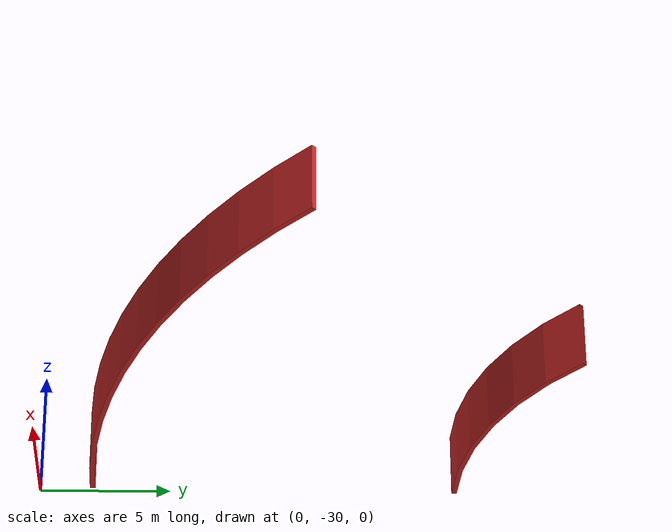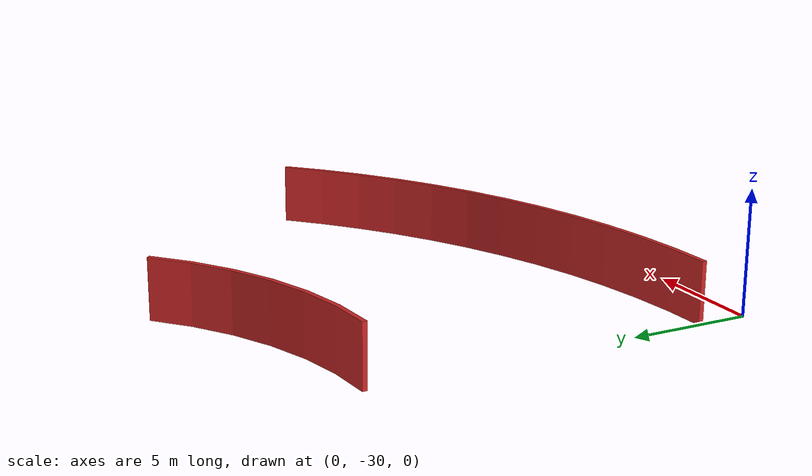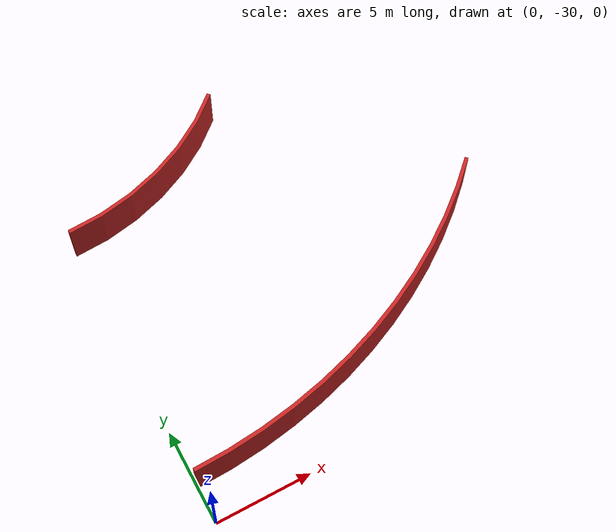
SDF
<?xml version='1.0'?>
<sdf version='1.4'>
  <model name='round_turn_45_3m'>

    <link name='Curev_Wall'>
      <collision name='Wall_26_Collision'>
        <geometry>
		<mesh>
		<uri>model://materials/mesh/round_turn_45_21m.dae</uri>
		</mesh>
        </geometry>
        <pose>0 0 0 0 -0 0</pose>
      </collision>
      <visual name='Wall_26_Visual'>
        <pose>0 0 0 0 -0 0</pose>
        <geometry>

		<mesh>
		<uri>model://materials/mesh/round_turn_45_21m.dae</uri>
		</mesh>
        </geometry>
        <material>
          <script>
             <uri>model://materials/scripts</uri>
             <uri>model://materials/textures</uri>
             <name>vrc/red_wall_x4</name>
          </script>
        </material>
      </visual>
      <velocity_decay>
        <linear>0</linear>
        <angular>0</angular>
      </velocity_decay>
      <pose>0 0 0 0 -0 0</pose>
    </link>

    <static>1</static>
  </model>
</sdf>
